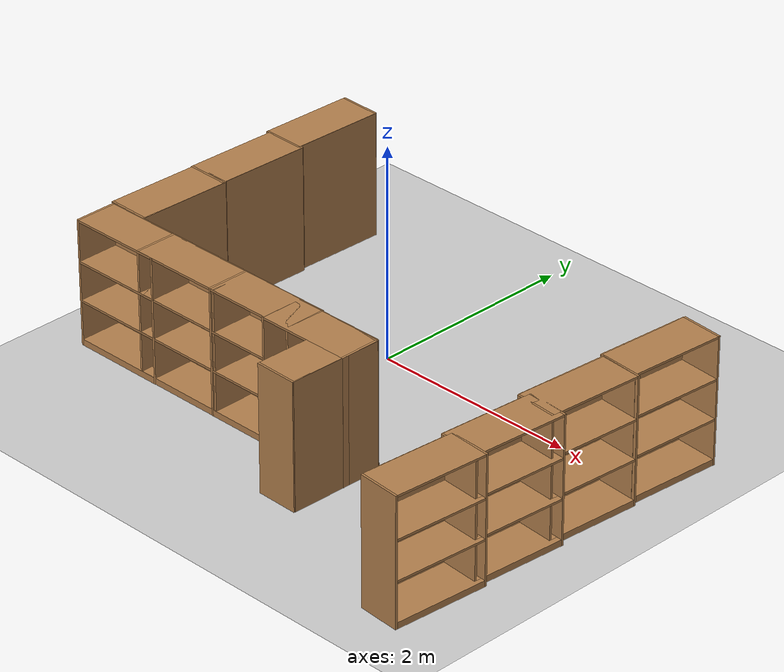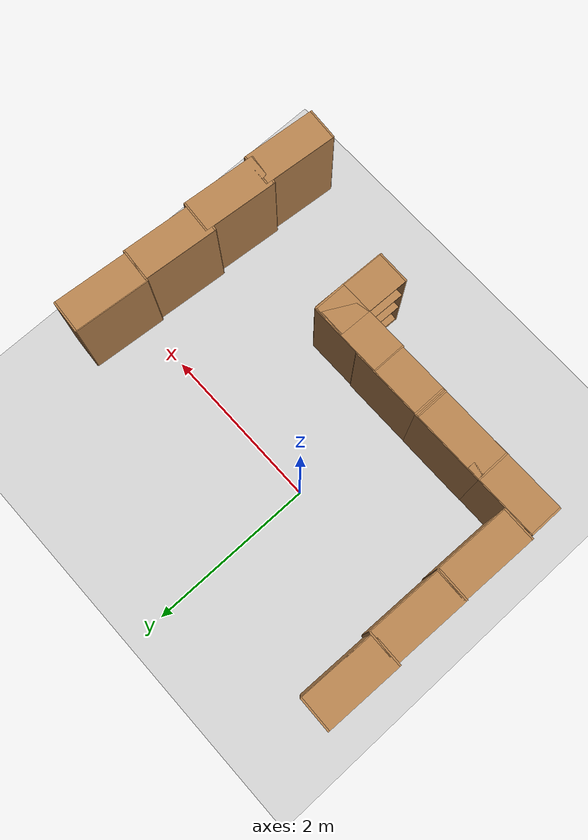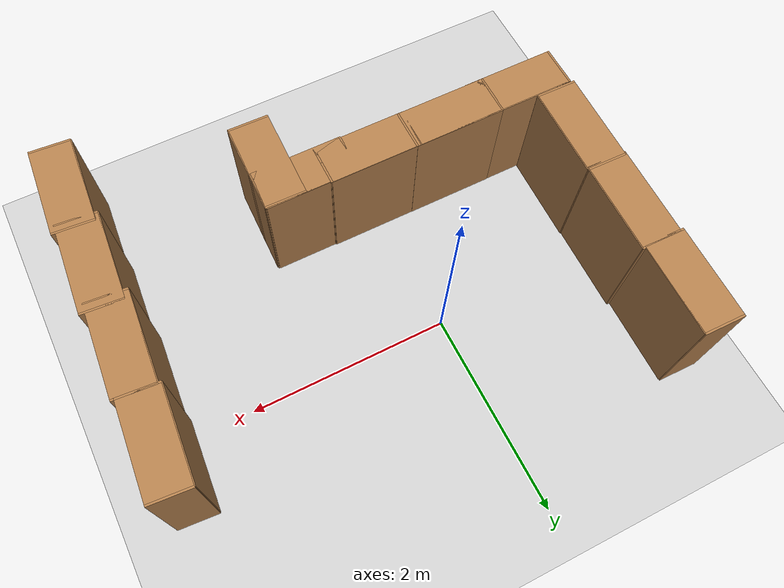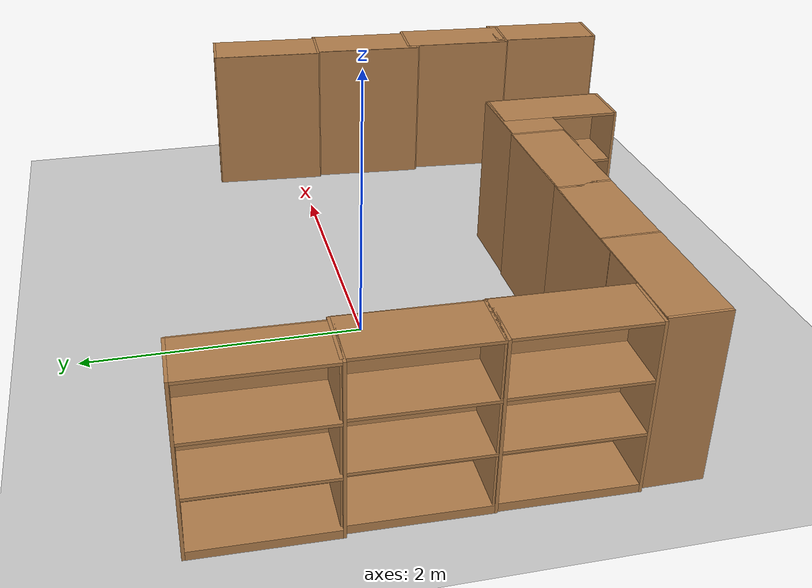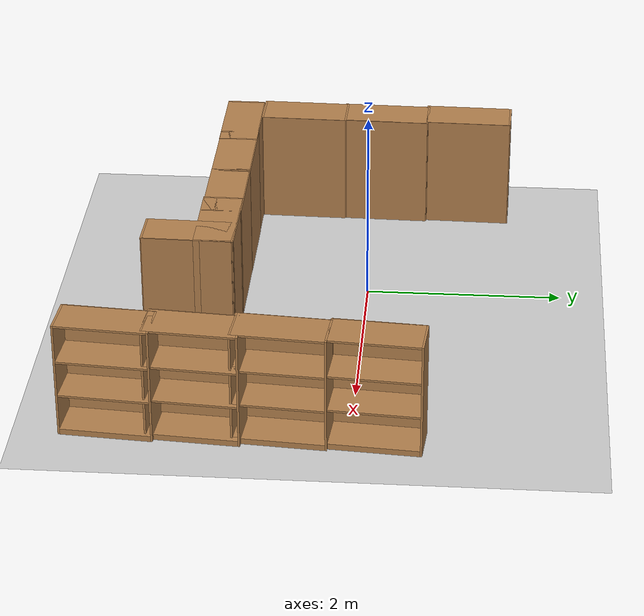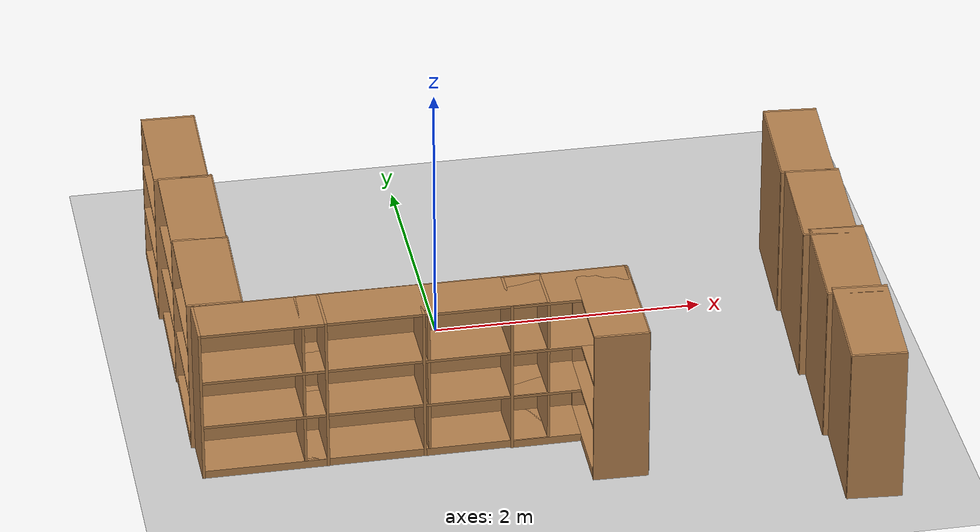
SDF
<sdf version="1.6">
 <world name="default">
  <model name="ground_plane">
   <static>1</static>
   <link name="link">
    <collision name="collision">
     <geometry><plane><normal>0 0 1</normal><size>100 100</size></plane></geometry>
     <surface>
      <contact><collide_bitmask>65535</collide_bitmask></contact>
      <friction><ode><mu>100</mu><mu2>50</mu2></ode></friction>
     </surface>
    </collision>
    <visual name="visual">
     <cast_shadows>0</cast_shadows>
     <geometry><plane><normal>0 0 1</normal><size>100 100</size></plane></geometry>
     <material>
      <script><uri>file://media/materials/scripts/gazebo.material</uri><name>Gazebo/Grey</name></script>
     </material>
    </visual>
   </link>
  </model>
  <model name="bookshelf">
   <static>1</static>
   <link name="link">
    <inertial><mass>1</mass></inertial>
    <collision name="back">
     <pose>0 0.005 0.6 0 -0 0</pose>
     <geometry><box><size>0.9 0.01 1.2</size></box></geometry>
    </collision>
    <visual name="visual1">
     <pose>0 0.005 0.6 0 -0 0</pose>
     <geometry><box><size>0.9 0.01 1.2</size></box></geometry>
     <material>
      <script><uri>file://media/materials/scripts/gazebo.material</uri><name>Gazebo/Wood</name></script>
     </material>
    </visual>
    <collision name="left_side">
     <pose>0.45 -0.195 0.6 0 -0 0</pose>
     <geometry><box><size>0.02 0.4 1.2</size></box></geometry>
    </collision>
    <visual name="visual2">
     <pose>0.45 -0.195 0.6 0 -0 0</pose>
     <geometry><box><size>0.02 0.4 1.2</size></box></geometry>
     <material>
      <script><uri>file://media/materials/scripts/gazebo.material</uri><name>Gazebo/Wood</name></script>
     </material>
    </visual>
    <collision name="right_side">
     <pose>-0.45 -0.195 0.6 0 -0 0</pose>
     <geometry><box><size>0.02 0.4 1.2</size></box></geometry>
    </collision>
    <visual name="visual3">
     <pose>-0.45 -0.195 0.6 0 -0 0</pose>
     <geometry><box><size>0.02 0.4 1.2</size></box></geometry>
     <material>
      <script><uri>file://media/materials/scripts/gazebo.material</uri><name>Gazebo/Wood</name></script>
     </material>
    </visual>
    <collision name="bottom">
     <pose>0 -0.195 0.03 0 -0 0</pose>
     <geometry><box><size>0.88 0.4 0.06</size></box></geometry>
    </collision>
    <visual name="visual4">
     <pose>0 -0.195 0.03 0 -0 0</pose>
     <geometry><box><size>0.88 0.4 0.06</size></box></geometry>
     <material>
      <script><uri>file://media/materials/scripts/gazebo.material</uri><name>Gazebo/Wood</name></script>
     </material>
    </visual>
    <collision name="top">
     <pose>0 -0.195 1.19 0 -0 0</pose>
     <geometry><box><size>0.88 0.4 0.02</size></box></geometry>
    </collision>
    <visual name="visual5">
     <pose>0 -0.195 1.19 0 -0 0</pose>
     <geometry><box><size>0.88 0.4 0.02</size></box></geometry>
     <material>
      <script><uri>file://media/materials/scripts/gazebo.material</uri><name>Gazebo/Wood</name></script>
     </material>
    </visual>
    <collision name="low_shelf">
     <pose>0 -0.195 0.43 0 -0 0</pose>
     <geometry><box><size>0.88 0.4 0.02</size></box></geometry>
    </collision>
    <visual name="visual6">
     <pose>0 -0.195 0.43 0 -0 0</pose>
     <geometry><box><size>0.88 0.4 0.02</size></box></geometry>
     <material>
      <script><uri>file://media/materials/scripts/gazebo.material</uri><name>Gazebo/Wood</name></script>
     </material>
    </visual>
    <collision name="high_shelf">
     <pose>0 -0.195 0.8 0 -0 0</pose>
     <geometry><box><size>0.88 0.4 0.02</size></box></geometry>
    </collision>
    <visual name="visual7">
     <pose>0 -0.195 0.8 0 -0 0</pose>
     <geometry><box><size>0.88 0.4 0.02</size></box></geometry>
     <material>
      <script><uri>file://media/materials/scripts/gazebo.material</uri><name>Gazebo/Wood</name></script>
     </material>
    </visual>
   </link>
   <pose>0.085981 -1.25886 0 0 -0 0</pose>
  </model>
  <model name="bookshelf_clone">
   <static>1</static>
   <link name="link">
    <inertial><mass>1</mass></inertial>
    <collision name="back">
     <pose>0 0.005 0.6 0 -0 0</pose>
     <geometry><box><size>0.9 0.01 1.2</size></box></geometry>
    </collision>
    <visual name="visual1">
     <pose>0 0.005 0.6 0 -0 0</pose>
     <geometry><box><size>0.9 0.01 1.2</size></box></geometry>
     <material>
      <script><uri>file://media/materials/scripts/gazebo.material</uri><name>Gazebo/Wood</name></script>
     </material>
    </visual>
    <collision name="left_side">
     <pose>0.45 -0.195 0.6 0 -0 0</pose>
     <geometry><box><size>0.02 0.4 1.2</size></box></geometry>
    </collision>
    <visual name="visual2">
     <pose>0.45 -0.195 0.6 0 -0 0</pose>
     <geometry><box><size>0.02 0.4 1.2</size></box></geometry>
     <material>
      <script><uri>file://media/materials/scripts/gazebo.material</uri><name>Gazebo/Wood</name></script>
     </material>
    </visual>
    <collision name="right_side">
     <pose>-0.45 -0.195 0.6 0 -0 0</pose>
     <geometry><box><size>0.02 0.4 1.2</size></box></geometry>
    </collision>
    <visual name="visual3">
     <pose>-0.45 -0.195 0.6 0 -0 0</pose>
     <geometry><box><size>0.02 0.4 1.2</size></box></geometry>
     <material>
      <script><uri>file://media/materials/scripts/gazebo.material</uri><name>Gazebo/Wood</name></script>
     </material>
    </visual>
    <collision name="bottom">
     <pose>0 -0.195 0.03 0 -0 0</pose>
     <geometry><box><size>0.88 0.4 0.06</size></box></geometry>
    </collision>
    <visual name="visual4">
     <pose>0 -0.195 0.03 0 -0 0</pose>
     <geometry><box><size>0.88 0.4 0.06</size></box></geometry>
     <material>
      <script><uri>file://media/materials/scripts/gazebo.material</uri><name>Gazebo/Wood</name></script>
     </material>
    </visual>
    <collision name="top">
     <pose>0 -0.195 1.19 0 -0 0</pose>
     <geometry><box><size>0.88 0.4 0.02</size></box></geometry>
    </collision>
    <visual name="visual5">
     <pose>0 -0.195 1.19 0 -0 0</pose>
     <geometry><box><size>0.88 0.4 0.02</size></box></geometry>
     <material>
      <script><uri>file://media/materials/scripts/gazebo.material</uri><name>Gazebo/Wood</name></script>
     </material>
    </visual>
    <collision name="low_shelf">
     <pose>0 -0.195 0.43 0 -0 0</pose>
     <geometry><box><size>0.88 0.4 0.02</size></box></geometry>
    </collision>
    <visual name="visual6">
     <pose>0 -0.195 0.43 0 -0 0</pose>
     <geometry><box><size>0.88 0.4 0.02</size></box></geometry>
     <material>
      <script><uri>file://media/materials/scripts/gazebo.material</uri><name>Gazebo/Wood</name></script>
     </material>
    </visual>
    <collision name="high_shelf">
     <pose>0 -0.195 0.8 0 -0 0</pose>
     <geometry><box><size>0.88 0.4 0.02</size></box></geometry>
    </collision>
    <visual name="visual7">
     <pose>0 -0.195 0.8 0 -0 0</pose>
     <geometry><box><size>0.88 0.4 0.02</size></box></geometry>
     <material>
      <script><uri>file://media/materials/scripts/gazebo.material</uri><name>Gazebo/Wood</name></script>
     </material>
    </visual>
   </link>
   <pose>-0.779963 -1.25694 0 0 -0 0</pose>
  </model>
  <model name="bookshelf_clone_0">
   <static>1</static>
   <link name="link">
    <inertial><mass>1</mass></inertial>
    <collision name="back">
     <pose>0 0.005 0.6 0 -0 0</pose>
     <geometry><box><size>0.9 0.01 1.2</size></box></geometry>
    </collision>
    <visual name="visual1">
     <pose>0 0.005 0.6 0 -0 0</pose>
     <geometry><box><size>0.9 0.01 1.2</size></box></geometry>
     <material>
      <script><uri>file://media/materials/scripts/gazebo.material</uri><name>Gazebo/Wood</name></script>
     </material>
    </visual>
    <collision name="left_side">
     <pose>0.45 -0.195 0.6 0 -0 0</pose>
     <geometry><box><size>0.02 0.4 1.2</size></box></geometry>
    </collision>
    <visual name="visual2">
     <pose>0.45 -0.195 0.6 0 -0 0</pose>
     <geometry><box><size>0.02 0.4 1.2</size></box></geometry>
     <material>
      <script><uri>file://media/materials/scripts/gazebo.material</uri><name>Gazebo/Wood</name></script>
     </material>
    </visual>
    <collision name="right_side">
     <pose>-0.45 -0.195 0.6 0 -0 0</pose>
     <geometry><box><size>0.02 0.4 1.2</size></box></geometry>
    </collision>
    <visual name="visual3">
     <pose>-0.45 -0.195 0.6 0 -0 0</pose>
     <geometry><box><size>0.02 0.4 1.2</size></box></geometry>
     <material>
      <script><uri>file://media/materials/scripts/gazebo.material</uri><name>Gazebo/Wood</name></script>
     </material>
    </visual>
    <collision name="bottom">
     <pose>0 -0.195 0.03 0 -0 0</pose>
     <geometry><box><size>0.88 0.4 0.06</size></box></geometry>
    </collision>
    <visual name="visual4">
     <pose>0 -0.195 0.03 0 -0 0</pose>
     <geometry><box><size>0.88 0.4 0.06</size></box></geometry>
     <material>
      <script><uri>file://media/materials/scripts/gazebo.material</uri><name>Gazebo/Wood</name></script>
     </material>
    </visual>
    <collision name="top">
     <pose>0 -0.195 1.19 0 -0 0</pose>
     <geometry><box><size>0.88 0.4 0.02</size></box></geometry>
    </collision>
    <visual name="visual5">
     <pose>0 -0.195 1.19 0 -0 0</pose>
     <geometry><box><size>0.88 0.4 0.02</size></box></geometry>
     <material>
      <script><uri>file://media/materials/scripts/gazebo.material</uri><name>Gazebo/Wood</name></script>
     </material>
    </visual>
    <collision name="low_shelf">
     <pose>0 -0.195 0.43 0 -0 0</pose>
     <geometry><box><size>0.88 0.4 0.02</size></box></geometry>
    </collision>
    <visual name="visual6">
     <pose>0 -0.195 0.43 0 -0 0</pose>
     <geometry><box><size>0.88 0.4 0.02</size></box></geometry>
     <material>
      <script><uri>file://media/materials/scripts/gazebo.material</uri><name>Gazebo/Wood</name></script>
     </material>
    </visual>
    <collision name="high_shelf">
     <pose>0 -0.195 0.8 0 -0 0</pose>
     <geometry><box><size>0.88 0.4 0.02</size></box></geometry>
    </collision>
    <visual name="visual7">
     <pose>0 -0.195 0.8 0 -0 0</pose>
     <geometry><box><size>0.88 0.4 0.02</size></box></geometry>
     <material>
      <script><uri>file://media/materials/scripts/gazebo.material</uri><name>Gazebo/Wood</name></script>
     </material>
    </visual>
   </link>
   <pose>-1.51682 -1.25964 0 0 -0 0</pose>
  </model>
  <model name="bookshelf_clone_1">
   <static>1</static>
   <link name="link">
    <inertial><mass>1</mass></inertial>
    <collision name="back">
     <pose>0 0.005 0.6 0 -0 0</pose>
     <geometry><box><size>0.9 0.01 1.2</size></box></geometry>
    </collision>
    <visual name="visual1">
     <pose>0 0.005 0.6 0 -0 0</pose>
     <geometry><box><size>0.9 0.01 1.2</size></box></geometry>
     <material>
      <script><uri>file://media/materials/scripts/gazebo.material</uri><name>Gazebo/Wood</name></script>
     </material>
    </visual>
    <collision name="left_side">
     <pose>0.45 -0.195 0.6 0 -0 0</pose>
     <geometry><box><size>0.02 0.4 1.2</size></box></geometry>
    </collision>
    <visual name="visual2">
     <pose>0.45 -0.195 0.6 0 -0 0</pose>
     <geometry><box><size>0.02 0.4 1.2</size></box></geometry>
     <material>
      <script><uri>file://media/materials/scripts/gazebo.material</uri><name>Gazebo/Wood</name></script>
     </material>
    </visual>
    <collision name="right_side">
     <pose>-0.45 -0.195 0.6 0 -0 0</pose>
     <geometry><box><size>0.02 0.4 1.2</size></box></geometry>
    </collision>
    <visual name="visual3">
     <pose>-0.45 -0.195 0.6 0 -0 0</pose>
     <geometry><box><size>0.02 0.4 1.2</size></box></geometry>
     <material>
      <script><uri>file://media/materials/scripts/gazebo.material</uri><name>Gazebo/Wood</name></script>
     </material>
    </visual>
    <collision name="bottom">
     <pose>0 -0.195 0.03 0 -0 0</pose>
     <geometry><box><size>0.88 0.4 0.06</size></box></geometry>
    </collision>
    <visual name="visual4">
     <pose>0 -0.195 0.03 0 -0 0</pose>
     <geometry><box><size>0.88 0.4 0.06</size></box></geometry>
     <material>
      <script><uri>file://media/materials/scripts/gazebo.material</uri><name>Gazebo/Wood</name></script>
     </material>
    </visual>
    <collision name="top">
     <pose>0 -0.195 1.19 0 -0 0</pose>
     <geometry><box><size>0.88 0.4 0.02</size></box></geometry>
    </collision>
    <visual name="visual5">
     <pose>0 -0.195 1.19 0 -0 0</pose>
     <geometry><box><size>0.88 0.4 0.02</size></box></geometry>
     <material>
      <script><uri>file://media/materials/scripts/gazebo.material</uri><name>Gazebo/Wood</name></script>
     </material>
    </visual>
    <collision name="low_shelf">
     <pose>0 -0.195 0.43 0 -0 0</pose>
     <geometry><box><size>0.88 0.4 0.02</size></box></geometry>
    </collision>
    <visual name="visual6">
     <pose>0 -0.195 0.43 0 -0 0</pose>
     <geometry><box><size>0.88 0.4 0.02</size></box></geometry>
     <material>
      <script><uri>file://media/materials/scripts/gazebo.material</uri><name>Gazebo/Wood</name></script>
     </material>
    </visual>
    <collision name="high_shelf">
     <pose>0 -0.195 0.8 0 -0 0</pose>
     <geometry><box><size>0.88 0.4 0.02</size></box></geometry>
    </collision>
    <visual name="visual7">
     <pose>0 -0.195 0.8 0 -0 0</pose>
     <geometry><box><size>0.88 0.4 0.02</size></box></geometry>
     <material>
      <script><uri>file://media/materials/scripts/gazebo.material</uri><name>Gazebo/Wood</name></script>
     </material>
    </visual>
   </link>
   <pose>-1.5992 -0.793808 0 0 0 -1.59248</pose>
  </model>
  <model name="bookshelf_clone_1_clone">
   <static>1</static>
   <link name="link">
    <inertial><mass>1</mass></inertial>
    <collision name="back">
     <pose>0 0.005 0.6 0 -0 0</pose>
     <geometry><box><size>0.9 0.01 1.2</size></box></geometry>
    </collision>
    <visual name="visual1">
     <pose>0 0.005 0.6 0 -0 0</pose>
     <geometry><box><size>0.9 0.01 1.2</size></box></geometry>
     <material>
      <script><uri>file://media/materials/scripts/gazebo.material</uri><name>Gazebo/Wood</name></script>
     </material>
    </visual>
    <collision name="left_side">
     <pose>0.45 -0.195 0.6 0 -0 0</pose>
     <geometry><box><size>0.02 0.4 1.2</size></box></geometry>
    </collision>
    <visual name="visual2">
     <pose>0.45 -0.195 0.6 0 -0 0</pose>
     <geometry><box><size>0.02 0.4 1.2</size></box></geometry>
     <material>
      <script><uri>file://media/materials/scripts/gazebo.material</uri><name>Gazebo/Wood</name></script>
     </material>
    </visual>
    <collision name="right_side">
     <pose>-0.45 -0.195 0.6 0 -0 0</pose>
     <geometry><box><size>0.02 0.4 1.2</size></box></geometry>
    </collision>
    <visual name="visual3">
     <pose>-0.45 -0.195 0.6 0 -0 0</pose>
     <geometry><box><size>0.02 0.4 1.2</size></box></geometry>
     <material>
      <script><uri>file://media/materials/scripts/gazebo.material</uri><name>Gazebo/Wood</name></script>
     </material>
    </visual>
    <collision name="bottom">
     <pose>0 -0.195 0.03 0 -0 0</pose>
     <geometry><box><size>0.88 0.4 0.06</size></box></geometry>
    </collision>
    <visual name="visual4">
     <pose>0 -0.195 0.03 0 -0 0</pose>
     <geometry><box><size>0.88 0.4 0.06</size></box></geometry>
     <material>
      <script><uri>file://media/materials/scripts/gazebo.material</uri><name>Gazebo/Wood</name></script>
     </material>
    </visual>
    <collision name="top">
     <pose>0 -0.195 1.19 0 -0 0</pose>
     <geometry><box><size>0.88 0.4 0.02</size></box></geometry>
    </collision>
    <visual name="visual5">
     <pose>0 -0.195 1.19 0 -0 0</pose>
     <geometry><box><size>0.88 0.4 0.02</size></box></geometry>
     <material>
      <script><uri>file://media/materials/scripts/gazebo.material</uri><name>Gazebo/Wood</name></script>
     </material>
    </visual>
    <collision name="low_shelf">
     <pose>0 -0.195 0.43 0 -0 0</pose>
     <geometry><box><size>0.88 0.4 0.02</size></box></geometry>
    </collision>
    <visual name="visual6">
     <pose>0 -0.195 0.43 0 -0 0</pose>
     <geometry><box><size>0.88 0.4 0.02</size></box></geometry>
     <material>
      <script><uri>file://media/materials/scripts/gazebo.material</uri><name>Gazebo/Wood</name></script>
     </material>
    </visual>
    <collision name="high_shelf">
     <pose>0 -0.195 0.8 0 -0 0</pose>
     <geometry><box><size>0.88 0.4 0.02</size></box></geometry>
    </collision>
    <visual name="visual7">
     <pose>0 -0.195 0.8 0 -0 0</pose>
     <geometry><box><size>0.88 0.4 0.02</size></box></geometry>
     <material>
      <script><uri>file://media/materials/scripts/gazebo.material</uri><name>Gazebo/Wood</name></script>
     </material>
    </visual>
   </link>
   <pose>-1.58956 0.092038 0 0 0 -1.59248</pose>
  </model>
  <model name="bookshelf_clone_1_clone_0">
   <static>1</static>
   <link name="link">
    <inertial><mass>1</mass></inertial>
    <collision name="back">
     <pose>0 0.005 0.6 0 -0 0</pose>
     <geometry><box><size>0.9 0.01 1.2</size></box></geometry>
    </collision>
    <visual name="visual1">
     <pose>0 0.005 0.6 0 -0 0</pose>
     <geometry><box><size>0.9 0.01 1.2</size></box></geometry>
     <material>
      <script><uri>file://media/materials/scripts/gazebo.material</uri><name>Gazebo/Wood</name></script>
     </material>
    </visual>
    <collision name="left_side">
     <pose>0.45 -0.195 0.6 0 -0 0</pose>
     <geometry><box><size>0.02 0.4 1.2</size></box></geometry>
    </collision>
    <visual name="visual2">
     <pose>0.45 -0.195 0.6 0 -0 0</pose>
     <geometry><box><size>0.02 0.4 1.2</size></box></geometry>
     <material>
      <script><uri>file://media/materials/scripts/gazebo.material</uri><name>Gazebo/Wood</name></script>
     </material>
    </visual>
    <collision name="right_side">
     <pose>-0.45 -0.195 0.6 0 -0 0</pose>
     <geometry><box><size>0.02 0.4 1.2</size></box></geometry>
    </collision>
    <visual name="visual3">
     <pose>-0.45 -0.195 0.6 0 -0 0</pose>
     <geometry><box><size>0.02 0.4 1.2</size></box></geometry>
     <material>
      <script><uri>file://media/materials/scripts/gazebo.material</uri><name>Gazebo/Wood</name></script>
     </material>
    </visual>
    <collision name="bottom">
     <pose>0 -0.195 0.03 0 -0 0</pose>
     <geometry><box><size>0.88 0.4 0.06</size></box></geometry>
    </collision>
    <visual name="visual4">
     <pose>0 -0.195 0.03 0 -0 0</pose>
     <geometry><box><size>0.88 0.4 0.06</size></box></geometry>
     <material>
      <script><uri>file://media/materials/scripts/gazebo.material</uri><name>Gazebo/Wood</name></script>
     </material>
    </visual>
    <collision name="top">
     <pose>0 -0.195 1.19 0 -0 0</pose>
     <geometry><box><size>0.88 0.4 0.02</size></box></geometry>
    </collision>
    <visual name="visual5">
     <pose>0 -0.195 1.19 0 -0 0</pose>
     <geometry><box><size>0.88 0.4 0.02</size></box></geometry>
     <material>
      <script><uri>file://media/materials/scripts/gazebo.material</uri><name>Gazebo/Wood</name></script>
     </material>
    </visual>
    <collision name="low_shelf">
     <pose>0 -0.195 0.43 0 -0 0</pose>
     <geometry><box><size>0.88 0.4 0.02</size></box></geometry>
    </collision>
    <visual name="visual6">
     <pose>0 -0.195 0.43 0 -0 0</pose>
     <geometry><box><size>0.88 0.4 0.02</size></box></geometry>
     <material>
      <script><uri>file://media/materials/scripts/gazebo.material</uri><name>Gazebo/Wood</name></script>
     </material>
    </visual>
    <collision name="high_shelf">
     <pose>0 -0.195 0.8 0 -0 0</pose>
     <geometry><box><size>0.88 0.4 0.02</size></box></geometry>
    </collision>
    <visual name="visual7">
     <pose>0 -0.195 0.8 0 -0 0</pose>
     <geometry><box><size>0.88 0.4 0.02</size></box></geometry>
     <material>
      <script><uri>file://media/materials/scripts/gazebo.material</uri><name>Gazebo/Wood</name></script>
     </material>
    </visual>
   </link>
   <pose>-1.60052 0.980763 0 0 0 -1.59248</pose>
  </model>
  <model name="bookshelf_clone_0_clone_clone_1_clone_4">
   <static>1</static>
   <link name="link">
    <inertial><mass>1</mass></inertial>
    <collision name="back">
     <pose>0 0.005 0.6 0 -0 0</pose>
     <geometry><box><size>0.9 0.01 1.2</size></box></geometry>
    </collision>
    <visual name="visual1">
     <pose>0 0.005 0.6 0 -0 0</pose>
     <geometry><box><size>0.9 0.01 1.2</size></box></geometry>
     <material>
      <script><uri>file://media/materials/scripts/gazebo.material</uri><name>Gazebo/Wood</name></script>
     </material>
    </visual>
    <collision name="left_side">
     <pose>0.45 -0.195 0.6 0 -0 0</pose>
     <geometry><box><size>0.02 0.4 1.2</size></box></geometry>
    </collision>
    <visual name="visual2">
     <pose>0.45 -0.195 0.6 0 -0 0</pose>
     <geometry><box><size>0.02 0.4 1.2</size></box></geometry>
     <material>
      <script><uri>file://media/materials/scripts/gazebo.material</uri><name>Gazebo/Wood</name></script>
     </material>
    </visual>
    <collision name="right_side">
     <pose>-0.45 -0.195 0.6 0 -0 0</pose>
     <geometry><box><size>0.02 0.4 1.2</size></box></geometry>
    </collision>
    <visual name="visual3">
     <pose>-0.45 -0.195 0.6 0 -0 0</pose>
     <geometry><box><size>0.02 0.4 1.2</size></box></geometry>
     <material>
      <script><uri>file://media/materials/scripts/gazebo.material</uri><name>Gazebo/Wood</name></script>
     </material>
    </visual>
    <collision name="bottom">
     <pose>0 -0.195 0.03 0 -0 0</pose>
     <geometry><box><size>0.88 0.4 0.06</size></box></geometry>
    </collision>
    <visual name="visual4">
     <pose>0 -0.195 0.03 0 -0 0</pose>
     <geometry><box><size>0.88 0.4 0.06</size></box></geometry>
     <material>
      <script><uri>file://media/materials/scripts/gazebo.material</uri><name>Gazebo/Wood</name></script>
     </material>
    </visual>
    <collision name="top">
     <pose>0 -0.195 1.19 0 -0 0</pose>
     <geometry><box><size>0.88 0.4 0.02</size></box></geometry>
    </collision>
    <visual name="visual5">
     <pose>0 -0.195 1.19 0 -0 0</pose>
     <geometry><box><size>0.88 0.4 0.02</size></box></geometry>
     <material>
      <script><uri>file://media/materials/scripts/gazebo.material</uri><name>Gazebo/Wood</name></script>
     </material>
    </visual>
    <collision name="low_shelf">
     <pose>0 -0.195 0.43 0 -0 0</pose>
     <geometry><box><size>0.88 0.4 0.02</size></box></geometry>
    </collision>
    <visual name="visual6">
     <pose>0 -0.195 0.43 0 -0 0</pose>
     <geometry><box><size>0.88 0.4 0.02</size></box></geometry>
     <material>
      <script><uri>file://media/materials/scripts/gazebo.material</uri><name>Gazebo/Wood</name></script>
     </material>
    </visual>
    <collision name="high_shelf">
     <pose>0 -0.195 0.8 0 -0 0</pose>
     <geometry><box><size>0.88 0.4 0.02</size></box></geometry>
    </collision>
    <visual name="visual7">
     <pose>0 -0.195 0.8 0 -0 0</pose>
     <geometry><box><size>0.88 0.4 0.02</size></box></geometry>
     <material>
      <script><uri>file://media/materials/scripts/gazebo.material</uri><name>Gazebo/Wood</name></script>
     </material>
    </visual>
   </link>
   <pose>2.59947 0.264518 0 0 -0 1.49339</pose>
  </model>
  <model name="bookshelf_clone_2">
   <static>1</static>
   <link name="link">
    <inertial><mass>1</mass></inertial>
    <collision name="back">
     <pose>0 0.005 0.6 0 -0 0</pose>
     <geometry><box><size>0.9 0.01 1.2</size></box></geometry>
    </collision>
    <visual name="visual1">
     <pose>0 0.005 0.6 0 -0 0</pose>
     <geometry><box><size>0.9 0.01 1.2</size></box></geometry>
     <material>
      <script><uri>file://media/materials/scripts/gazebo.material</uri><name>Gazebo/Wood</name></script>
     </material>
    </visual>
    <collision name="left_side">
     <pose>0.45 -0.195 0.6 0 -0 0</pose>
     <geometry><box><size>0.02 0.4 1.2</size></box></geometry>
    </collision>
    <visual name="visual2">
     <pose>0.45 -0.195 0.6 0 -0 0</pose>
     <geometry><box><size>0.02 0.4 1.2</size></box></geometry>
     <material>
      <script><uri>file://media/materials/scripts/gazebo.material</uri><name>Gazebo/Wood</name></script>
     </material>
    </visual>
    <collision name="right_side">
     <pose>-0.45 -0.195 0.6 0 -0 0</pose>
     <geometry><box><size>0.02 0.4 1.2</size></box></geometry>
    </collision>
    <visual name="visual3">
     <pose>-0.45 -0.195 0.6 0 -0 0</pose>
     <geometry><box><size>0.02 0.4 1.2</size></box></geometry>
     <material>
      <script><uri>file://media/materials/scripts/gazebo.material</uri><name>Gazebo/Wood</name></script>
     </material>
    </visual>
    <collision name="bottom">
     <pose>0 -0.195 0.03 0 -0 0</pose>
     <geometry><box><size>0.88 0.4 0.06</size></box></geometry>
    </collision>
    <visual name="visual4">
     <pose>0 -0.195 0.03 0 -0 0</pose>
     <geometry><box><size>0.88 0.4 0.06</size></box></geometry>
     <material>
      <script><uri>file://media/materials/scripts/gazebo.material</uri><name>Gazebo/Wood</name></script>
     </material>
    </visual>
    <collision name="top">
     <pose>0 -0.195 1.19 0 -0 0</pose>
     <geometry><box><size>0.88 0.4 0.02</size></box></geometry>
    </collision>
    <visual name="visual5">
     <pose>0 -0.195 1.19 0 -0 0</pose>
     <geometry><box><size>0.88 0.4 0.02</size></box></geometry>
     <material>
      <script><uri>file://media/materials/scripts/gazebo.material</uri><name>Gazebo/Wood</name></script>
     </material>
    </visual>
    <collision name="low_shelf">
     <pose>0 -0.195 0.43 0 -0 0</pose>
     <geometry><box><size>0.88 0.4 0.02</size></box></geometry>
    </collision>
    <visual name="visual6">
     <pose>0 -0.195 0.43 0 -0 0</pose>
     <geometry><box><size>0.88 0.4 0.02</size></box></geometry>
     <material>
      <script><uri>file://media/materials/scripts/gazebo.material</uri><name>Gazebo/Wood</name></script>
     </material>
    </visual>
    <collision name="high_shelf">
     <pose>0 -0.195 0.8 0 -0 0</pose>
     <geometry><box><size>0.88 0.4 0.02</size></box></geometry>
    </collision>
    <visual name="visual7">
     <pose>0 -0.195 0.8 0 -0 0</pose>
     <geometry><box><size>0.88 0.4 0.02</size></box></geometry>
     <material>
      <script><uri>file://media/materials/scripts/gazebo.material</uri><name>Gazebo/Wood</name></script>
     </material>
    </visual>
   </link>
   <pose>0.718513 -1.26879 0 0 -0 0</pose>
  </model>
  <model name="bookshelf_clone_1_clone_0_clone_clone">
   <static>1</static>
   <link name="link">
    <inertial><mass>1</mass></inertial>
    <collision name="back">
     <pose>0 0.005 0.6 0 -0 0</pose>
     <geometry><box><size>0.9 0.01 1.2</size></box></geometry>
    </collision>
    <visual name="visual1">
     <pose>0 0.005 0.6 0 -0 0</pose>
     <geometry><box><size>0.9 0.01 1.2</size></box></geometry>
     <material>
      <script><uri>file://media/materials/scripts/gazebo.material</uri><name>Gazebo/Wood</name></script>
     </material>
    </visual>
    <collision name="left_side">
     <pose>0.45 -0.195 0.6 0 -0 0</pose>
     <geometry><box><size>0.02 0.4 1.2</size></box></geometry>
    </collision>
    <visual name="visual2">
     <pose>0.45 -0.195 0.6 0 -0 0</pose>
     <geometry><box><size>0.02 0.4 1.2</size></box></geometry>
     <material>
      <script><uri>file://media/materials/scripts/gazebo.material</uri><name>Gazebo/Wood</name></script>
     </material>
    </visual>
    <collision name="right_side">
     <pose>-0.45 -0.195 0.6 0 -0 0</pose>
     <geometry><box><size>0.02 0.4 1.2</size></box></geometry>
    </collision>
    <visual name="visual3">
     <pose>-0.45 -0.195 0.6 0 -0 0</pose>
     <geometry><box><size>0.02 0.4 1.2</size></box></geometry>
     <material>
      <script><uri>file://media/materials/scripts/gazebo.material</uri><name>Gazebo/Wood</name></script>
     </material>
    </visual>
    <collision name="bottom">
     <pose>0 -0.195 0.03 0 -0 0</pose>
     <geometry><box><size>0.88 0.4 0.06</size></box></geometry>
    </collision>
    <visual name="visual4">
     <pose>0 -0.195 0.03 0 -0 0</pose>
     <geometry><box><size>0.88 0.4 0.06</size></box></geometry>
     <material>
      <script><uri>file://media/materials/scripts/gazebo.material</uri><name>Gazebo/Wood</name></script>
     </material>
    </visual>
    <collision name="top">
     <pose>0 -0.195 1.19 0 -0 0</pose>
     <geometry><box><size>0.88 0.4 0.02</size></box></geometry>
    </collision>
    <visual name="visual5">
     <pose>0 -0.195 1.19 0 -0 0</pose>
     <geometry><box><size>0.88 0.4 0.02</size></box></geometry>
     <material>
      <script><uri>file://media/materials/scripts/gazebo.material</uri><name>Gazebo/Wood</name></script>
     </material>
    </visual>
    <collision name="low_shelf">
     <pose>0 -0.195 0.43 0 -0 0</pose>
     <geometry><box><size>0.88 0.4 0.02</size></box></geometry>
    </collision>
    <visual name="visual6">
     <pose>0 -0.195 0.43 0 -0 0</pose>
     <geometry><box><size>0.88 0.4 0.02</size></box></geometry>
     <material>
      <script><uri>file://media/materials/scripts/gazebo.material</uri><name>Gazebo/Wood</name></script>
     </material>
    </visual>
    <collision name="high_shelf">
     <pose>0 -0.195 0.8 0 -0 0</pose>
     <geometry><box><size>0.88 0.4 0.02</size></box></geometry>
    </collision>
    <visual name="visual7">
     <pose>0 -0.195 0.8 0 -0 0</pose>
     <geometry><box><size>0.88 0.4 0.02</size></box></geometry>
     <material>
      <script><uri>file://media/materials/scripts/gazebo.material</uri><name>Gazebo/Wood</name></script>
     </material>
    </visual>
   </link>
   <pose>1.16566 -1.73137 0 0 0 -1.59248</pose>
  </model>
  <model name="bookshelf_clone_0_clone_clone_1_clone_4_clone">
   <static>1</static>
   <link name="link">
    <inertial><mass>1</mass></inertial>
    <collision name="back">
     <pose>0 0.005 0.6 0 -0 0</pose>
     <geometry><box><size>0.9 0.01 1.2</size></box></geometry>
    </collision>
    <visual name="visual1">
     <pose>0 0.005 0.6 0 -0 0</pose>
     <geometry><box><size>0.9 0.01 1.2</size></box></geometry>
     <material>
      <script><uri>file://media/materials/scripts/gazebo.material</uri><name>Gazebo/Wood</name></script>
     </material>
    </visual>
    <collision name="left_side">
     <pose>0.45 -0.195 0.6 0 -0 0</pose>
     <geometry><box><size>0.02 0.4 1.2</size></box></geometry>
    </collision>
    <visual name="visual2">
     <pose>0.45 -0.195 0.6 0 -0 0</pose>
     <geometry><box><size>0.02 0.4 1.2</size></box></geometry>
     <material>
      <script><uri>file://media/materials/scripts/gazebo.material</uri><name>Gazebo/Wood</name></script>
     </material>
    </visual>
    <collision name="right_side">
     <pose>-0.45 -0.195 0.6 0 -0 0</pose>
     <geometry><box><size>0.02 0.4 1.2</size></box></geometry>
    </collision>
    <visual name="visual3">
     <pose>-0.45 -0.195 0.6 0 -0 0</pose>
     <geometry><box><size>0.02 0.4 1.2</size></box></geometry>
     <material>
      <script><uri>file://media/materials/scripts/gazebo.material</uri><name>Gazebo/Wood</name></script>
     </material>
    </visual>
    <collision name="bottom">
     <pose>0 -0.195 0.03 0 -0 0</pose>
     <geometry><box><size>0.88 0.4 0.06</size></box></geometry>
    </collision>
    <visual name="visual4">
     <pose>0 -0.195 0.03 0 -0 0</pose>
     <geometry><box><size>0.88 0.4 0.06</size></box></geometry>
     <material>
      <script><uri>file://media/materials/scripts/gazebo.material</uri><name>Gazebo/Wood</name></script>
     </material>
    </visual>
    <collision name="top">
     <pose>0 -0.195 1.19 0 -0 0</pose>
     <geometry><box><size>0.88 0.4 0.02</size></box></geometry>
    </collision>
    <visual name="visual5">
     <pose>0 -0.195 1.19 0 -0 0</pose>
     <geometry><box><size>0.88 0.4 0.02</size></box></geometry>
     <material>
      <script><uri>file://media/materials/scripts/gazebo.material</uri><name>Gazebo/Wood</name></script>
     </material>
    </visual>
    <collision name="low_shelf">
     <pose>0 -0.195 0.43 0 -0 0</pose>
     <geometry><box><size>0.88 0.4 0.02</size></box></geometry>
    </collision>
    <visual name="visual6">
     <pose>0 -0.195 0.43 0 -0 0</pose>
     <geometry><box><size>0.88 0.4 0.02</size></box></geometry>
     <material>
      <script><uri>file://media/materials/scripts/gazebo.material</uri><name>Gazebo/Wood</name></script>
     </material>
    </visual>
    <collision name="high_shelf">
     <pose>0 -0.195 0.8 0 -0 0</pose>
     <geometry><box><size>0.88 0.4 0.02</size></box></geometry>
    </collision>
    <visual name="visual7">
     <pose>0 -0.195 0.8 0 -0 0</pose>
     <geometry><box><size>0.88 0.4 0.02</size></box></geometry>
     <material>
      <script><uri>file://media/materials/scripts/gazebo.material</uri><name>Gazebo/Wood</name></script>
     </material>
    </visual>
   </link>
   <pose>2.56068 -0.633827 0 0 -0 1.49339</pose>
  </model>
  <model name="bookshelf_clone_0_clone_clone_1_clone_4_clone_0">
   <static>1</static>
   <link name="link">
    <inertial><mass>1</mass></inertial>
    <collision name="back">
     <pose>0 0.005 0.6 0 -0 0</pose>
     <geometry><box><size>0.9 0.01 1.2</size></box></geometry>
    </collision>
    <visual name="visual1">
     <pose>0 0.005 0.6 0 -0 0</pose>
     <geometry><box><size>0.9 0.01 1.2</size></box></geometry>
     <material>
      <script><uri>file://media/materials/scripts/gazebo.material</uri><name>Gazebo/Wood</name></script>
     </material>
    </visual>
    <collision name="left_side">
     <pose>0.45 -0.195 0.6 0 -0 0</pose>
     <geometry><box><size>0.02 0.4 1.2</size></box></geometry>
    </collision>
    <visual name="visual2">
     <pose>0.45 -0.195 0.6 0 -0 0</pose>
     <geometry><box><size>0.02 0.4 1.2</size></box></geometry>
     <material>
      <script><uri>file://media/materials/scripts/gazebo.material</uri><name>Gazebo/Wood</name></script>
     </material>
    </visual>
    <collision name="right_side">
     <pose>-0.45 -0.195 0.6 0 -0 0</pose>
     <geometry><box><size>0.02 0.4 1.2</size></box></geometry>
    </collision>
    <visual name="visual3">
     <pose>-0.45 -0.195 0.6 0 -0 0</pose>
     <geometry><box><size>0.02 0.4 1.2</size></box></geometry>
     <material>
      <script><uri>file://media/materials/scripts/gazebo.material</uri><name>Gazebo/Wood</name></script>
     </material>
    </visual>
    <collision name="bottom">
     <pose>0 -0.195 0.03 0 -0 0</pose>
     <geometry><box><size>0.88 0.4 0.06</size></box></geometry>
    </collision>
    <visual name="visual4">
     <pose>0 -0.195 0.03 0 -0 0</pose>
     <geometry><box><size>0.88 0.4 0.06</size></box></geometry>
     <material>
      <script><uri>file://media/materials/scripts/gazebo.material</uri><name>Gazebo/Wood</name></script>
     </material>
    </visual>
    <collision name="top">
     <pose>0 -0.195 1.19 0 -0 0</pose>
     <geometry><box><size>0.88 0.4 0.02</size></box></geometry>
    </collision>
    <visual name="visual5">
     <pose>0 -0.195 1.19 0 -0 0</pose>
     <geometry><box><size>0.88 0.4 0.02</size></box></geometry>
     <material>
      <script><uri>file://media/materials/scripts/gazebo.material</uri><name>Gazebo/Wood</name></script>
     </material>
    </visual>
    <collision name="low_shelf">
     <pose>0 -0.195 0.43 0 -0 0</pose>
     <geometry><box><size>0.88 0.4 0.02</size></box></geometry>
    </collision>
    <visual name="visual6">
     <pose>0 -0.195 0.43 0 -0 0</pose>
     <geometry><box><size>0.88 0.4 0.02</size></box></geometry>
     <material>
      <script><uri>file://media/materials/scripts/gazebo.material</uri><name>Gazebo/Wood</name></script>
     </material>
    </visual>
    <collision name="high_shelf">
     <pose>0 -0.195 0.8 0 -0 0</pose>
     <geometry><box><size>0.88 0.4 0.02</size></box></geometry>
    </collision>
    <visual name="visual7">
     <pose>0 -0.195 0.8 0 -0 0</pose>
     <geometry><box><size>0.88 0.4 0.02</size></box></geometry>
     <material>
      <script><uri>file://media/materials/scripts/gazebo.material</uri><name>Gazebo/Wood</name></script>
     </material>
    </visual>
   </link>
   <pose>2.54838 -1.45609 0 0 -0 1.49339</pose>
  </model>
  <model name="bookshelf_clone_0_clone_clone_1_clone_4_clone_1">
   <static>1</static>
   <link name="link">
    <inertial><mass>1</mass></inertial>
    <collision name="back">
     <pose>0 0.005 0.6 0 -0 0</pose>
     <geometry><box><size>0.9 0.01 1.2</size></box></geometry>
    </collision>
    <visual name="visual1">
     <pose>0 0.005 0.6 0 -0 0</pose>
     <geometry><box><size>0.9 0.01 1.2</size></box></geometry>
     <material>
      <script><uri>file://media/materials/scripts/gazebo.material</uri><name>Gazebo/Wood</name></script>
     </material>
    </visual>
    <collision name="left_side">
     <pose>0.45 -0.195 0.6 0 -0 0</pose>
     <geometry><box><size>0.02 0.4 1.2</size></box></geometry>
    </collision>
    <visual name="visual2">
     <pose>0.45 -0.195 0.6 0 -0 0</pose>
     <geometry><box><size>0.02 0.4 1.2</size></box></geometry>
     <material>
      <script><uri>file://media/materials/scripts/gazebo.material</uri><name>Gazebo/Wood</name></script>
     </material>
    </visual>
    <collision name="right_side">
     <pose>-0.45 -0.195 0.6 0 -0 0</pose>
     <geometry><box><size>0.02 0.4 1.2</size></box></geometry>
    </collision>
    <visual name="visual3">
     <pose>-0.45 -0.195 0.6 0 -0 0</pose>
     <geometry><box><size>0.02 0.4 1.2</size></box></geometry>
     <material>
      <script><uri>file://media/materials/scripts/gazebo.material</uri><name>Gazebo/Wood</name></script>
     </material>
    </visual>
    <collision name="bottom">
     <pose>0 -0.195 0.03 0 -0 0</pose>
     <geometry><box><size>0.88 0.4 0.06</size></box></geometry>
    </collision>
    <visual name="visual4">
     <pose>0 -0.195 0.03 0 -0 0</pose>
     <geometry><box><size>0.88 0.4 0.06</size></box></geometry>
     <material>
      <script><uri>file://media/materials/scripts/gazebo.material</uri><name>Gazebo/Wood</name></script>
     </material>
    </visual>
    <collision name="top">
     <pose>0 -0.195 1.19 0 -0 0</pose>
     <geometry><box><size>0.88 0.4 0.02</size></box></geometry>
    </collision>
    <visual name="visual5">
     <pose>0 -0.195 1.19 0 -0 0</pose>
     <geometry><box><size>0.88 0.4 0.02</size></box></geometry>
     <material>
      <script><uri>file://media/materials/scripts/gazebo.material</uri><name>Gazebo/Wood</name></script>
     </material>
    </visual>
    <collision name="low_shelf">
     <pose>0 -0.195 0.43 0 -0 0</pose>
     <geometry><box><size>0.88 0.4 0.02</size></box></geometry>
    </collision>
    <visual name="visual6">
     <pose>0 -0.195 0.43 0 -0 0</pose>
     <geometry><box><size>0.88 0.4 0.02</size></box></geometry>
     <material>
      <script><uri>file://media/materials/scripts/gazebo.material</uri><name>Gazebo/Wood</name></script>
     </material>
    </visual>
    <collision name="high_shelf">
     <pose>0 -0.195 0.8 0 -0 0</pose>
     <geometry><box><size>0.88 0.4 0.02</size></box></geometry>
    </collision>
    <visual name="visual7">
     <pose>0 -0.195 0.8 0 -0 0</pose>
     <geometry><box><size>0.88 0.4 0.02</size></box></geometry>
     <material>
      <script><uri>file://media/materials/scripts/gazebo.material</uri><name>Gazebo/Wood</name></script>
     </material>
    </visual>
   </link>
   <pose>2.52468 -2.28787 0 0 -0 1.49339</pose>
  </model>
 </world>
</sdf>
